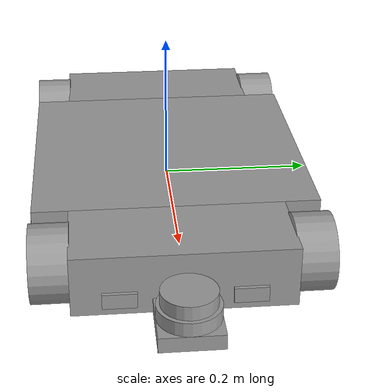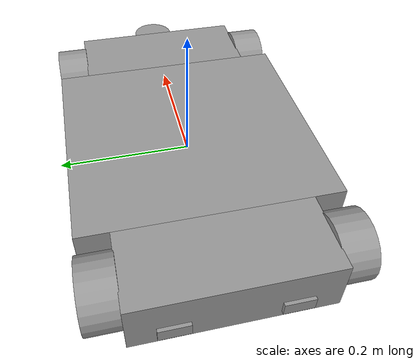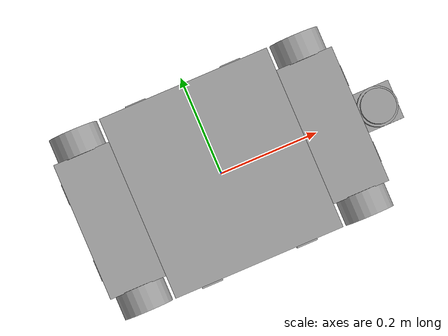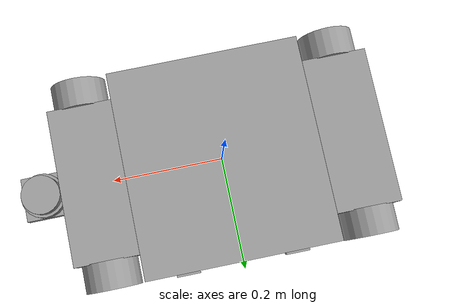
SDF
<sdf version="1.6">
 <model name="MobileRobot">
  <link name="link_0">
   <inertial>
    <mass>1</mass>
    <inertia>
     <ixx>0.166667</ixx>
     <ixy>0</ixy>
     <ixz>0</ixz>
     <iyy>0.166667</iyy>
     <iyz>0</iyz>
     <izz>0.166667</izz>
    </inertia>
   </inertial>
   <visual name="visual">
    <geometry><box><size>0.34888 0.3736 0.08</size></box></geometry>
    <material>
     <lighting>1</lighting>
     <script><uri>file://media/materials/scripts/gazebo.material</uri><name>Gazebo/Grey</name></script>
     <ambient>0.3 0.3 0.3 1</ambient>
     <diffuse>0.7 0.7 0.7 1</diffuse>
     <specular>0.01 0.01 0.01 1</specular>
     <emissive>0 0 0 1</emissive>
     <shader type="vertex"><normal_map>__default__</normal_map></shader>
    </material>
   </visual>
   <collision name="collision">
    <geometry><box><size>0.34888 0.3736 0.08</size></box></geometry>
    <surface>
     <friction>
      <ode><mu>1</mu><mu2>1</mu2><fdir1>0 0 0</fdir1><slip1>0</slip1><slip2>0</slip2></ode>
      <torsional>
       <coefficient>1</coefficient>
       <patch_radius>0</patch_radius>
       <surface_radius>0</surface_radius>
       <use_patch_radius>1</use_patch_radius>
       <ode><slip>0</slip></ode>
      </torsional>
     </friction>
     <bounce><restitution_coefficient>0</restitution_coefficient><threshold>1e+06</threshold></bounce>
     <contact>
      <collide_without_contact>0</collide_without_contact>
      <collide_without_contact_bitmask>1</collide_without_contact_bitmask>
      <collide_bitmask>1</collide_bitmask>
      <ode>
       <soft_cfm>0</soft_cfm>
       <soft_erp>0.2</soft_erp>
       <kp>1e+13</kp>
       <kd>1</kd>
       <max_vel>0.01</max_vel>
       <min_depth>0</min_depth>
      </ode>
      <bullet>
       <split_impulse>1</split_impulse>
       <split_impulse_penetration_threshold>-0.01</split_impulse_penetration_threshold>
       <soft_cfm>0</soft_cfm>
       <soft_erp>0.2</soft_erp>
       <kp>1e+13</kp>
       <kd>1</kd>
      </bullet>
     </contact>
    </surface>
   </collision>
  </link>
  <link name="link_0_0">
   <pose>0.1 -0.187 -0.019 1e-06 -2e-06 -0.000137</pose>
   <inertial>
    <mass>1</mass>
    <inertia>
     <ixx>0.166667</ixx>
     <ixy>0</ixy>
     <ixz>0</ixz>
     <iyy>0.166667</iyy>
     <iyz>0</iyz>
     <izz>0.166667</izz>
    </inertia>
   </inertial>
   <sensor name="ultra1" type="ray">
    <pose>0 0 0 0 0 -1.5708</pose>
    <visualize>1</visualize>
    <update_rate>30</update_rate>
    <ray>
     <scan>
      <horizontal>
       <samples>2</samples>
       <resolution>1</resolution>
       <min_angle>-0.2618</min_angle>
       <max_angle>0.2618</max_angle>
      </horizontal>
      <vertical><samples>1</samples><min_angle>0</min_angle><max_angle>0</max_angle></vertical>
     </scan>
     <range><min>0.05</min><max>0.5</max><resolution>0.02</resolution></range>
    </ray>
    <plugin name="gazebo_ros_laser" filename="libgazebo_ros_laser.so">
     <topicName>/ultra1</topicName>
     <frameName>link_0_0</frameName>
    </plugin>
   </sensor>
   <visual name="visual">
    <geometry><box><size>0.043 0.01 0.02</size></box></geometry>
    <material>
     <lighting>1</lighting>
     <script><uri>file://media/materials/scripts/gazebo.material</uri><name>Gazebo/Grey</name></script>
     <ambient>0.3 0.3 0.3 1</ambient>
     <diffuse>0.7 0.7 0.7 1</diffuse>
     <specular>0.01 0.01 0.01 1</specular>
     <emissive>0 0 0 1</emissive>
     <shader type="vertex"><normal_map>__default__</normal_map></shader>
    </material>
   </visual>
   <collision name="collision">
    <geometry><box><size>0.043 0.01 0.02</size></box></geometry>
    <surface>
     <friction>
      <ode><mu>1</mu><mu2>1</mu2><fdir1>0 0 0</fdir1><slip1>0</slip1><slip2>0</slip2></ode>
      <torsional>
       <coefficient>1</coefficient>
       <patch_radius>0</patch_radius>
       <surface_radius>0</surface_radius>
       <use_patch_radius>1</use_patch_radius>
       <ode><slip>0</slip></ode>
      </torsional>
     </friction>
     <bounce><restitution_coefficient>0</restitution_coefficient><threshold>1e+06</threshold></bounce>
     <contact>
      <collide_without_contact>0</collide_without_contact>
      <collide_without_contact_bitmask>1</collide_without_contact_bitmask>
      <collide_bitmask>1</collide_bitmask>
      <ode>
       <soft_cfm>0</soft_cfm>
       <soft_erp>0.2</soft_erp>
       <kp>1e+13</kp>
       <kd>1</kd>
       <max_vel>0.01</max_vel>
       <min_depth>0</min_depth>
      </ode>
      <bullet>
       <split_impulse>1</split_impulse>
       <split_impulse_penetration_threshold>-0.01</split_impulse_penetration_threshold>
       <soft_cfm>0</soft_cfm>
       <soft_erp>0.2</soft_erp>
       <kp>1e+13</kp>
       <kd>1</kd>
      </bullet>
     </contact>
    </surface>
   </collision>
  </link>
  <link name="link_0_0_clone">
   <pose>-0.1 -0.187 -0.019 2e-06 -4e-06 -0.000274</pose>
   <inertial>
    <mass>1</mass>
    <inertia>
     <ixx>0.166667</ixx>
     <ixy>0</ixy>
     <ixz>0</ixz>
     <iyy>0.166667</iyy>
     <iyz>0</iyz>
     <izz>0.166667</izz>
    </inertia>
   </inertial>
   <sensor name="ultra2" type="ray">
    <pose>0 0 0 0 0 -1.5708</pose>
    <visualize>1</visualize>
    <update_rate>30</update_rate>
    <ray>
     <scan>
      <horizontal>
       <samples>2</samples>
       <resolution>1</resolution>
       <min_angle>-0.2618</min_angle>
       <max_angle>0.2618</max_angle>
      </horizontal>
      <vertical><samples>1</samples><min_angle>0</min_angle><max_angle>0</max_angle></vertical>
     </scan>
     <range><min>0.05</min><max>0.5</max><resolution>0.02</resolution></range>
    </ray>
    <plugin name="gazebo_ros_laser" filename="libgazebo_ros_laser.so">
     <topicName>/ultra2</topicName>
     <frameName>link_0_0_clone</frameName>
    </plugin>
   </sensor>
   <visual name="visual_0">
    <geometry><box><size>0.043 0.01 0.02</size></box></geometry>
    <material>
     <lighting>1</lighting>
     <script><uri>file://media/materials/scripts/gazebo.material</uri><name>Gazebo/Grey</name></script>
     <ambient>0.3 0.3 0.3 1</ambient>
     <diffuse>0.7 0.7 0.7 1</diffuse>
     <specular>0.01 0.01 0.01 1</specular>
     <emissive>0 0 0 1</emissive>
     <shader type="vertex"><normal_map>__default__</normal_map></shader>
    </material>
   </visual>
   <collision name="collision">
    <geometry><box><size>0.043 0.01 0.02</size></box></geometry>
    <surface>
     <friction>
      <ode><mu>1</mu><mu2>1</mu2><fdir1>0 0 0</fdir1><slip1>0</slip1><slip2>0</slip2></ode>
      <torsional>
       <coefficient>1</coefficient>
       <patch_radius>0</patch_radius>
       <surface_radius>0</surface_radius>
       <use_patch_radius>1</use_patch_radius>
       <ode><slip>0</slip></ode>
      </torsional>
     </friction>
     <bounce><restitution_coefficient>0</restitution_coefficient><threshold>1e+06</threshold></bounce>
     <contact>
      <collide_without_contact>0</collide_without_contact>
      <collide_without_contact_bitmask>1</collide_without_contact_bitmask>
      <collide_bitmask>1</collide_bitmask>
      <ode>
       <soft_cfm>0</soft_cfm>
       <soft_erp>0.2</soft_erp>
       <kp>1e+13</kp>
       <kd>1</kd>
       <max_vel>0.01</max_vel>
       <min_depth>0</min_depth>
      </ode>
      <bullet>
       <split_impulse>1</split_impulse>
       <split_impulse_penetration_threshold>-0.01</split_impulse_penetration_threshold>
       <soft_cfm>0</soft_cfm>
       <soft_erp>0.2</soft_erp>
       <kp>1e+13</kp>
       <kd>1</kd>
      </bullet>
     </contact>
    </surface>
   </collision>
  </link>
  <link name="link_0_0_clone_0">
   <pose>0.1 0.187 -0.019 2e-06 -4e-06 -0.000274</pose>
   <inertial>
    <mass>1</mass>
    <inertia>
     <ixx>0.166667</ixx>
     <ixy>0</ixy>
     <ixz>0</ixz>
     <iyy>0.166667</iyy>
     <iyz>0</iyz>
     <izz>0.166667</izz>
    </inertia>
   </inertial>
   <sensor name="ultra3" type="ray">
    <pose>0 0 0 0 -0 1.5708</pose>
    <visualize>1</visualize>
    <update_rate>30</update_rate>
    <ray>
     <scan>
      <horizontal>
       <samples>2</samples>
       <resolution>1</resolution>
       <min_angle>-0.2618</min_angle>
       <max_angle>0.2618</max_angle>
      </horizontal>
      <vertical><samples>1</samples><min_angle>0</min_angle><max_angle>0</max_angle></vertical>
     </scan>
     <range><min>0.05</min><max>0.5</max><resolution>0.02</resolution></range>
    </ray>
    <plugin name="gazebo_ros_laser" filename="libgazebo_ros_laser.so">
     <topicName>/ultra3</topicName>
     <frameName>link_0_0_clone_0</frameName>
    </plugin>
   </sensor>
   <visual name="visual_0">
    <geometry><box><size>0.043 0.01 0.02</size></box></geometry>
    <material>
     <lighting>1</lighting>
     <script><uri>file://media/materials/scripts/gazebo.material</uri><name>Gazebo/Grey</name></script>
     <ambient>0.3 0.3 0.3 1</ambient>
     <diffuse>0.7 0.7 0.7 1</diffuse>
     <specular>0.01 0.01 0.01 1</specular>
     <emissive>0 0 0 1</emissive>
     <shader type="vertex"><normal_map>__default__</normal_map></shader>
    </material>
   </visual>
   <collision name="collision">
    <geometry><box><size>0.043 0.01 0.02</size></box></geometry>
    <surface>
     <friction>
      <ode><mu>1</mu><mu2>1</mu2><fdir1>0 0 0</fdir1><slip1>0</slip1><slip2>0</slip2></ode>
      <torsional>
       <coefficient>1</coefficient>
       <patch_radius>0</patch_radius>
       <surface_radius>0</surface_radius>
       <use_patch_radius>1</use_patch_radius>
       <ode><slip>0</slip></ode>
      </torsional>
     </friction>
     <bounce><restitution_coefficient>0</restitution_coefficient><threshold>1e+06</threshold></bounce>
     <contact>
      <collide_without_contact>0</collide_without_contact>
      <collide_without_contact_bitmask>1</collide_without_contact_bitmask>
      <collide_bitmask>1</collide_bitmask>
      <ode>
       <soft_cfm>0</soft_cfm>
       <soft_erp>0.2</soft_erp>
       <kp>1e+13</kp>
       <kd>1</kd>
       <max_vel>0.01</max_vel>
       <min_depth>0</min_depth>
      </ode>
      <bullet>
       <split_impulse>1</split_impulse>
       <split_impulse_penetration_threshold>-0.01</split_impulse_penetration_threshold>
       <soft_cfm>0</soft_cfm>
       <soft_erp>0.2</soft_erp>
       <kp>1e+13</kp>
       <kd>1</kd>
      </bullet>
     </contact>
    </surface>
   </collision>
  </link>
  <link name="link_0_0_clone_1">
   <pose>-0.1 0.187 -0.019 2e-06 -4e-06 -0.000274</pose>
   <inertial>
    <mass>1</mass>
    <inertia>
     <ixx>0.166667</ixx>
     <ixy>0</ixy>
     <ixz>0</ixz>
     <iyy>0.166667</iyy>
     <iyz>0</iyz>
     <izz>0.166667</izz>
    </inertia>
   </inertial>
   <sensor name="ultra4" type="ray">
    <pose>0 0 0 0 -0 1.5708</pose>
    <visualize>1</visualize>
    <update_rate>30</update_rate>
    <ray>
     <scan>
      <horizontal>
       <samples>2</samples>
       <resolution>1</resolution>
       <min_angle>-0.2618</min_angle>
       <max_angle>0.2618</max_angle>
      </horizontal>
      <vertical><samples>1</samples><min_angle>0</min_angle><max_angle>0</max_angle></vertical>
     </scan>
     <range><min>0.05</min><max>0.5</max><resolution>0.02</resolution></range>
    </ray>
    <plugin name="gazebo_ros_laser" filename="libgazebo_ros_laser.so">
     <topicName>/ultra4</topicName>
     <frameName>link_0_0_clone_1</frameName>
    </plugin>
   </sensor>
   <visual name="visual_0">
    <geometry><box><size>0.043 0.01 0.02</size></box></geometry>
    <material>
     <lighting>1</lighting>
     <script><uri>file://media/materials/scripts/gazebo.material</uri><name>Gazebo/Grey</name></script>
     <ambient>0.3 0.3 0.3 1</ambient>
     <diffuse>0.7 0.7 0.7 1</diffuse>
     <specular>0.01 0.01 0.01 1</specular>
     <emissive>0 0 0 1</emissive>
     <shader type="vertex"><normal_map>__default__</normal_map></shader>
    </material>
   </visual>
   <collision name="collision">
    <geometry><box><size>0.043 0.01 0.02</size></box></geometry>
    <surface>
     <friction>
      <ode><mu>1</mu><mu2>1</mu2><fdir1>0 0 0</fdir1><slip1>0</slip1><slip2>0</slip2></ode>
      <torsional>
       <coefficient>1</coefficient>
       <patch_radius>0</patch_radius>
       <surface_radius>0</surface_radius>
       <use_patch_radius>1</use_patch_radius>
       <ode><slip>0</slip></ode>
      </torsional>
     </friction>
     <bounce><restitution_coefficient>0</restitution_coefficient><threshold>1e+06</threshold></bounce>
     <contact>
      <collide_without_contact>0</collide_without_contact>
      <collide_without_contact_bitmask>1</collide_without_contact_bitmask>
      <collide_bitmask>1</collide_bitmask>
      <ode>
       <soft_cfm>0</soft_cfm>
       <soft_erp>0.2</soft_erp>
       <kp>1e+13</kp>
       <kd>1</kd>
       <max_vel>0.01</max_vel>
       <min_depth>0</min_depth>
      </ode>
      <bullet>
       <split_impulse>1</split_impulse>
       <split_impulse_penetration_threshold>-0.01</split_impulse_penetration_threshold>
       <soft_cfm>0</soft_cfm>
       <soft_erp>0.2</soft_erp>
       <kp>1e+13</kp>
       <kd>1</kd>
      </bullet>
     </contact>
    </surface>
   </collision>
  </link>
  <link name="link_0_0_clone_clone">
   <pose>-0.29 0.08 -0.019 0 -0 0</pose>
   <inertial>
    <mass>1</mass>
    <inertia>
     <ixx>0.166667</ixx>
     <ixy>0</ixy>
     <ixz>0</ixz>
     <iyy>0.166667</iyy>
     <iyz>0</iyz>
     <izz>0.166667</izz>
    </inertia>
   </inertial>
   <sensor name="ultra5" type="ray">
    <pose>0 0 0 0 -0 -3.14159</pose>
    <visualize>1</visualize>
    <update_rate>30</update_rate>
    <ray>
     <scan>
      <horizontal>
       <samples>2</samples>
       <resolution>1</resolution>
       <min_angle>-0.2618</min_angle>
       <max_angle>0.2618</max_angle>
      </horizontal>
      <vertical><samples>1</samples><min_angle>0</min_angle><max_angle>0</max_angle></vertical>
     </scan>
     <range><min>0.05</min><max>0.5</max><resolution>0.02</resolution></range>
    </ray>
    <plugin name="gazebo_ros_laser" filename="libgazebo_ros_laser.so">
     <topicName>/ultra5</topicName>
     <frameName>link_0_0_clone_clone</frameName>
    </plugin>
   </sensor>
   <visual name="visual_0">
    <geometry><box><size>0.01 0.043 0.02</size></box></geometry>
    <material>
     <lighting>1</lighting>
     <script><uri>file://media/materials/scripts/gazebo.material</uri><name>Gazebo/Grey</name></script>
     <ambient>0.3 0.3 0.3 1</ambient>
     <diffuse>0.7 0.7 0.7 1</diffuse>
     <specular>0.01 0.01 0.01 1</specular>
     <emissive>0 0 0 1</emissive>
     <shader type="vertex"><normal_map>__default__</normal_map></shader>
    </material>
   </visual>
   <collision name="collision">
    <geometry><box><size>0.01 0.043 0.02</size></box></geometry>
    <surface>
     <friction>
      <ode><mu>1</mu><mu2>1</mu2><fdir1>0 0 0</fdir1><slip1>0</slip1><slip2>0</slip2></ode>
      <torsional>
       <coefficient>1</coefficient>
       <patch_radius>0</patch_radius>
       <surface_radius>0</surface_radius>
       <use_patch_radius>1</use_patch_radius>
       <ode><slip>0</slip></ode>
      </torsional>
     </friction>
     <bounce><restitution_coefficient>0</restitution_coefficient><threshold>1e+06</threshold></bounce>
     <contact>
      <collide_without_contact>0</collide_without_contact>
      <collide_without_contact_bitmask>1</collide_without_contact_bitmask>
      <collide_bitmask>1</collide_bitmask>
      <ode>
       <soft_cfm>0</soft_cfm>
       <soft_erp>0.2</soft_erp>
       <kp>1e+13</kp>
       <kd>1</kd>
       <max_vel>0.01</max_vel>
       <min_depth>0</min_depth>
      </ode>
      <bullet>
       <split_impulse>1</split_impulse>
       <split_impulse_penetration_threshold>-0.01</split_impulse_penetration_threshold>
       <soft_cfm>0</soft_cfm>
       <soft_erp>0.2</soft_erp>
       <kp>1e+13</kp>
       <kd>1</kd>
      </bullet>
     </contact>
    </surface>
   </collision>
  </link>
  <link name="link_0_0_clone_clone_clone">
   <pose>-0.29 -0.08 -0.019 0 -0 0</pose>
   <inertial>
    <mass>1</mass>
    <inertia>
     <ixx>0.166667</ixx>
     <ixy>0</ixy>
     <ixz>0</ixz>
     <iyy>0.166667</iyy>
     <iyz>0</iyz>
     <izz>0.166667</izz>
    </inertia>
   </inertial>
   <sensor name="ultra6" type="ray">
    <pose>0 0 0 0 -0 3.14159</pose>
    <visualize>1</visualize>
    <update_rate>30</update_rate>
    <ray>
     <scan>
      <horizontal>
       <samples>2</samples>
       <resolution>1</resolution>
       <min_angle>-0.2618</min_angle>
       <max_angle>0.2618</max_angle>
      </horizontal>
      <vertical><samples>1</samples><min_angle>0</min_angle><max_angle>0</max_angle></vertical>
     </scan>
     <range><min>0.05</min><max>0.5</max><resolution>0.02</resolution></range>
    </ray>
    <plugin name="gazebo_ros_laser" filename="libgazebo_ros_laser.so">
     <topicName>/ultra6</topicName>
     <frameName>link_0_0_clone_clone_clone</frameName>
    </plugin>
   </sensor>
   <visual name="visual_0">
    <geometry><box><size>0.01 0.043 0.02</size></box></geometry>
    <material>
     <lighting>1</lighting>
     <script><uri>file://media/materials/scripts/gazebo.material</uri><name>Gazebo/Grey</name></script>
     <ambient>0.3 0.3 0.3 1</ambient>
     <diffuse>0.7 0.7 0.7 1</diffuse>
     <specular>0.01 0.01 0.01 1</specular>
     <emissive>0 0 0 1</emissive>
     <shader type="vertex"><normal_map>__default__</normal_map></shader>
    </material>
   </visual>
   <collision name="collision">
    <geometry><box><size>0.01 0.043 0.02</size></box></geometry>
    <surface>
     <friction>
      <ode><mu>1</mu><mu2>1</mu2><fdir1>0 0 0</fdir1><slip1>0</slip1><slip2>0</slip2></ode>
      <torsional>
       <coefficient>1</coefficient>
       <patch_radius>0</patch_radius>
       <surface_radius>0</surface_radius>
       <use_patch_radius>1</use_patch_radius>
       <ode><slip>0</slip></ode>
      </torsional>
     </friction>
     <bounce><restitution_coefficient>0</restitution_coefficient><threshold>1e+06</threshold></bounce>
     <contact>
      <collide_without_contact>0</collide_without_contact>
      <collide_without_contact_bitmask>1</collide_without_contact_bitmask>
      <collide_bitmask>1</collide_bitmask>
      <ode>
       <soft_cfm>0</soft_cfm>
       <soft_erp>0.2</soft_erp>
       <kp>1e+13</kp>
       <kd>1</kd>
       <max_vel>0.01</max_vel>
       <min_depth>0</min_depth>
      </ode>
      <bullet>
       <split_impulse>1</split_impulse>
       <split_impulse_penetration_threshold>-0.01</split_impulse_penetration_threshold>
       <soft_cfm>0</soft_cfm>
       <soft_erp>0.2</soft_erp>
       <kp>1e+13</kp>
       <kd>1</kd>
      </bullet>
     </contact>
    </surface>
   </collision>
  </link>
  <link name="link_0_0_clone_clone_clone_0">
   <pose>0.29 0.08 -0.019 1e-06 -3e-06 0.000146</pose>
   <inertial>
    <mass>1</mass>
    <inertia>
     <ixx>0.166667</ixx>
     <ixy>0</ixy>
     <ixz>0</ixz>
     <iyy>0.166667</iyy>
     <iyz>0</iyz>
     <izz>0.166667</izz>
    </inertia>
   </inertial>
   <sensor name="ultra7" type="ray">
    <visualize>1</visualize>
    <update_rate>30</update_rate>
    <ray>
     <scan>
      <horizontal>
       <samples>2</samples>
       <resolution>1</resolution>
       <min_angle>-0.2618</min_angle>
       <max_angle>0.2618</max_angle>
      </horizontal>
      <vertical><samples>1</samples><min_angle>0</min_angle><max_angle>0</max_angle></vertical>
     </scan>
     <range><min>0.05</min><max>0.5</max><resolution>0.02</resolution></range>
    </ray>
    <plugin name="gazebo_ros_laser" filename="libgazebo_ros_laser.so">
     <topicName>/ultra7</topicName>
     <frameName>link_0_0_clone_clone_clone_0</frameName>
    </plugin>
   </sensor>
   <visual name="visual_0">
    <geometry><box><size>0.01 0.043 0.02</size></box></geometry>
    <material>
     <lighting>1</lighting>
     <script><uri>file://media/materials/scripts/gazebo.material</uri><name>Gazebo/Grey</name></script>
     <ambient>0.3 0.3 0.3 1</ambient>
     <diffuse>0.7 0.7 0.7 1</diffuse>
     <specular>0.01 0.01 0.01 1</specular>
     <emissive>0 0 0 1</emissive>
     <shader type="vertex"><normal_map>__default__</normal_map></shader>
    </material>
   </visual>
   <collision name="collision">
    <geometry><box><size>0.01 0.043 0.02</size></box></geometry>
    <surface>
     <friction>
      <ode><mu>1</mu><mu2>1</mu2><fdir1>0 0 0</fdir1><slip1>0</slip1><slip2>0</slip2></ode>
      <torsional>
       <coefficient>1</coefficient>
       <patch_radius>0</patch_radius>
       <surface_radius>0</surface_radius>
       <use_patch_radius>1</use_patch_radius>
       <ode><slip>0</slip></ode>
      </torsional>
     </friction>
     <bounce><restitution_coefficient>0</restitution_coefficient><threshold>1e+06</threshold></bounce>
     <contact>
      <collide_without_contact>0</collide_without_contact>
      <collide_without_contact_bitmask>1</collide_without_contact_bitmask>
      <collide_bitmask>1</collide_bitmask>
      <ode>
       <soft_cfm>0</soft_cfm>
       <soft_erp>0.2</soft_erp>
       <kp>1e+13</kp>
       <kd>1</kd>
       <max_vel>0.01</max_vel>
       <min_depth>0</min_depth>
      </ode>
      <bullet>
       <split_impulse>1</split_impulse>
       <split_impulse_penetration_threshold>-0.01</split_impulse_penetration_threshold>
       <soft_cfm>0</soft_cfm>
       <soft_erp>0.2</soft_erp>
       <kp>1e+13</kp>
       <kd>1</kd>
      </bullet>
     </contact>
    </surface>
   </collision>
  </link>
  <link name="link_0_0_clone_clone_clone_0_clone">
   <pose>0.29 -0.08 -0.019 2e-06 -6e-06 0.000292</pose>
   <inertial>
    <mass>1</mass>
    <inertia>
     <ixx>0.166667</ixx>
     <ixy>0</ixy>
     <ixz>0</ixz>
     <iyy>0.166667</iyy>
     <iyz>0</iyz>
     <izz>0.166667</izz>
    </inertia>
   </inertial>
   <sensor name="ultra8" type="ray">
    <visualize>1</visualize>
    <update_rate>30</update_rate>
    <ray>
     <scan>
      <horizontal>
       <samples>2</samples>
       <resolution>1</resolution>
       <min_angle>-0.2618</min_angle>
       <max_angle>0.2618</max_angle>
      </horizontal>
      <vertical><samples>1</samples><min_angle>0</min_angle><max_angle>0</max_angle></vertical>
     </scan>
     <range><min>0.05</min><max>0.5</max><resolution>0.02</resolution></range>
    </ray>
    <plugin name="gazebo_ros_laser" filename="libgazebo_ros_laser.so">
     <topicName>/ultra8</topicName>
     <frameName>link_0_0_clone_clone_clone_0_clone</frameName>
    </plugin>
   </sensor>
   <visual name="visual_0">
    <geometry><box><size>0.01 0.043 0.02</size></box></geometry>
    <material>
     <lighting>1</lighting>
     <script><uri>file://media/materials/scripts/gazebo.material</uri><name>Gazebo/Grey</name></script>
     <ambient>0.3 0.3 0.3 1</ambient>
     <diffuse>0.7 0.7 0.7 1</diffuse>
     <specular>0.01 0.01 0.01 1</specular>
     <emissive>0 0 0 1</emissive>
     <shader type="vertex"><normal_map>__default__</normal_map></shader>
    </material>
   </visual>
   <collision name="collision">
    <geometry><box><size>0.01 0.043 0.02</size></box></geometry>
    <surface>
     <friction>
      <ode><mu>1</mu><mu2>1</mu2><fdir1>0 0 0</fdir1><slip1>0</slip1><slip2>0</slip2></ode>
      <torsional>
       <coefficient>1</coefficient>
       <patch_radius>0</patch_radius>
       <surface_radius>0</surface_radius>
       <use_patch_radius>1</use_patch_radius>
       <ode><slip>0</slip></ode>
      </torsional>
     </friction>
     <bounce><restitution_coefficient>0</restitution_coefficient><threshold>1e+06</threshold></bounce>
     <contact>
      <collide_without_contact>0</collide_without_contact>
      <collide_without_contact_bitmask>1</collide_without_contact_bitmask>
      <collide_bitmask>1</collide_bitmask>
      <ode>
       <soft_cfm>0</soft_cfm>
       <soft_erp>0.2</soft_erp>
       <kp>1e+13</kp>
       <kd>1</kd>
       <max_vel>0.01</max_vel>
       <min_depth>0</min_depth>
      </ode>
      <bullet>
       <split_impulse>1</split_impulse>
       <split_impulse_penetration_threshold>-0.01</split_impulse_penetration_threshold>
       <soft_cfm>0</soft_cfm>
       <soft_erp>0.2</soft_erp>
       <kp>1e+13</kp>
       <kd>1</kd>
      </bullet>
     </contact>
    </surface>
   </collision>
  </link>
  <link name="link_1">
   <pose>-0.23222 0 -0 0 -0 0</pose>
   <inertial>
    <mass>1</mass>
    <inertia>
     <ixx>0.166667</ixx>
     <ixy>0</ixy>
     <ixz>0</ixz>
     <iyy>0.166667</iyy>
     <iyz>0</iyz>
     <izz>0.166667</izz>
    </inertia>
   </inertial>
   <visual name="visual">
    <geometry><box><size>0.11556 0.27932 0.08</size></box></geometry>
    <material>
     <lighting>1</lighting>
     <script><uri>file://media/materials/scripts/gazebo.material</uri><name>Gazebo/Grey</name></script>
     <ambient>0.3 0.3 0.3 1</ambient>
     <diffuse>0.7 0.7 0.7 1</diffuse>
     <specular>0.01 0.01 0.01 1</specular>
     <emissive>0 0 0 1</emissive>
     <shader type="vertex"><normal_map>__default__</normal_map></shader>
    </material>
   </visual>
   <collision name="collision">
    <geometry><box><size>0.11556 0.27932 0.08</size></box></geometry>
    <surface>
     <friction>
      <ode><mu>1</mu><mu2>1</mu2><fdir1>0 0 0</fdir1><slip1>0</slip1><slip2>0</slip2></ode>
      <torsional>
       <coefficient>1</coefficient>
       <patch_radius>0</patch_radius>
       <surface_radius>0</surface_radius>
       <use_patch_radius>1</use_patch_radius>
       <ode><slip>0</slip></ode>
      </torsional>
     </friction>
     <bounce><restitution_coefficient>0</restitution_coefficient><threshold>1e+06</threshold></bounce>
     <contact>
      <collide_without_contact>0</collide_without_contact>
      <collide_without_contact_bitmask>1</collide_without_contact_bitmask>
      <collide_bitmask>1</collide_bitmask>
      <ode>
       <soft_cfm>0</soft_cfm>
       <soft_erp>0.2</soft_erp>
       <kp>1e+13</kp>
       <kd>1</kd>
       <max_vel>0.01</max_vel>
       <min_depth>0</min_depth>
      </ode>
      <bullet>
       <split_impulse>1</split_impulse>
       <split_impulse_penetration_threshold>-0.01</split_impulse_penetration_threshold>
       <soft_cfm>0</soft_cfm>
       <soft_erp>0.2</soft_erp>
       <kp>1e+13</kp>
       <kd>1</kd>
      </bullet>
     </contact>
    </surface>
   </collision>
  </link>
  <link name="link_1_clone">
   <pose>0.23222 -0 0 0 -0 0</pose>
   <inertial>
    <mass>1</mass>
    <inertia>
     <ixx>0.166667</ixx>
     <ixy>0</ixy>
     <ixz>0</ixz>
     <iyy>0.166667</iyy>
     <iyz>0</iyz>
     <izz>0.166667</izz>
    </inertia>
   </inertial>
   <visual name="visual">
    <geometry><box><size>0.11556 0.27932 0.08</size></box></geometry>
    <material>
     <lighting>1</lighting>
     <script><uri>file://media/materials/scripts/gazebo.material</uri><name>Gazebo/Grey</name></script>
     <ambient>0.3 0.3 0.3 1</ambient>
     <diffuse>0.7 0.7 0.7 1</diffuse>
     <specular>0.01 0.01 0.01 1</specular>
     <emissive>0 0 0 1</emissive>
     <shader type="vertex"><normal_map>__default__</normal_map></shader>
    </material>
   </visual>
   <collision name="collision">
    <geometry><box><size>0.11556 0.27932 0.08</size></box></geometry>
    <surface>
     <friction>
      <ode><mu>1</mu><mu2>1</mu2><fdir1>0 0 0</fdir1><slip1>0</slip1><slip2>0</slip2></ode>
      <torsional>
       <coefficient>1</coefficient>
       <patch_radius>0</patch_radius>
       <surface_radius>0</surface_radius>
       <use_patch_radius>1</use_patch_radius>
       <ode><slip>0</slip></ode>
      </torsional>
     </friction>
     <bounce><restitution_coefficient>0</restitution_coefficient><threshold>1e+06</threshold></bounce>
     <contact>
      <collide_without_contact>0</collide_without_contact>
      <collide_without_contact_bitmask>1</collide_without_contact_bitmask>
      <collide_bitmask>1</collide_bitmask>
      <ode>
       <soft_cfm>0</soft_cfm>
       <soft_erp>0.2</soft_erp>
       <kp>1e+13</kp>
       <kd>1</kd>
       <max_vel>0.01</max_vel>
       <min_depth>0</min_depth>
      </ode>
      <bullet>
       <split_impulse>1</split_impulse>
       <split_impulse_penetration_threshold>-0.01</split_impulse_penetration_threshold>
       <soft_cfm>0</soft_cfm>
       <soft_erp>0.2</soft_erp>
       <kp>1e+13</kp>
       <kd>1</kd>
      </bullet>
     </contact>
    </surface>
   </collision>
  </link>
  <link name="link_3">
   <pose>0.23222 0.16323 0 1.5708 -0 0</pose>
   <inertial>
    <mass>2</mass>
    <inertia><ixx>0.145833</ixx><ixy>0</ixy><ixz>0</ixz><iyy>0.145833</iyy><iyz>0</iyz><izz>0.125</izz></inertia>
   </inertial>
   <visual name="visual">
    <geometry><cylinder><radius>0.05</radius><length>0.05</length></cylinder></geometry>
    <material>
     <lighting>1</lighting>
     <script><uri>file://media/materials/scripts/gazebo.material</uri><name>Gazebo/Grey</name></script>
     <ambient>0.3 0.3 0.3 1</ambient>
     <diffuse>0.7 0.7 0.7 1</diffuse>
     <specular>0.01 0.01 0.01 1</specular>
     <emissive>0 0 0 1</emissive>
     <shader type="vertex"><normal_map>__default__</normal_map></shader>
    </material>
   </visual>
   <collision name="collision">
    <geometry><cylinder><radius>0.05</radius><length>0.05</length></cylinder></geometry>
    <surface>
     <friction>
      <ode><mu>1</mu><mu2>1</mu2><fdir1>0 0 0</fdir1><slip1>0</slip1><slip2>0</slip2></ode>
      <torsional>
       <coefficient>1</coefficient>
       <patch_radius>0</patch_radius>
       <surface_radius>0</surface_radius>
       <use_patch_radius>1</use_patch_radius>
       <ode><slip>0</slip></ode>
      </torsional>
     </friction>
     <bounce><restitution_coefficient>0</restitution_coefficient><threshold>1e+06</threshold></bounce>
     <contact>
      <collide_without_contact>0</collide_without_contact>
      <collide_without_contact_bitmask>1</collide_without_contact_bitmask>
      <collide_bitmask>1</collide_bitmask>
      <ode>
       <soft_cfm>0</soft_cfm>
       <soft_erp>0.2</soft_erp>
       <kp>1e+13</kp>
       <kd>1</kd>
       <max_vel>0.01</max_vel>
       <min_depth>0</min_depth>
      </ode>
      <bullet>
       <split_impulse>1</split_impulse>
       <split_impulse_penetration_threshold>-0.01</split_impulse_penetration_threshold>
       <soft_cfm>0</soft_cfm>
       <soft_erp>0.2</soft_erp>
       <kp>1e+13</kp>
       <kd>1</kd>
      </bullet>
     </contact>
    </surface>
   </collision>
  </link>
  <link name="link_3_clone">
   <pose>-0.23222 0.16323 0 1.5708 -0 0</pose>
   <inertial>
    <mass>2</mass>
    <inertia><ixx>0.145833</ixx><ixy>0</ixy><ixz>0</ixz><iyy>0.145833</iyy><iyz>0</iyz><izz>0.125</izz></inertia>
   </inertial>
   <visual name="visual">
    <geometry><cylinder><radius>0.05</radius><length>0.05</length></cylinder></geometry>
    <material>
     <lighting>1</lighting>
     <script><uri>file://media/materials/scripts/gazebo.material</uri><name>Gazebo/Grey</name></script>
     <ambient>0.3 0.3 0.3 1</ambient>
     <diffuse>0.7 0.7 0.7 1</diffuse>
     <specular>0.01 0.01 0.01 1</specular>
     <emissive>0 0 0 1</emissive>
     <shader type="vertex"><normal_map>__default__</normal_map></shader>
    </material>
   </visual>
   <collision name="collision">
    <geometry><cylinder><radius>0.05</radius><length>0.05</length></cylinder></geometry>
    <surface>
     <friction>
      <ode><mu>1</mu><mu2>1</mu2><fdir1>0 0 0</fdir1><slip1>0</slip1><slip2>0</slip2></ode>
      <torsional>
       <coefficient>1</coefficient>
       <patch_radius>0</patch_radius>
       <surface_radius>0</surface_radius>
       <use_patch_radius>1</use_patch_radius>
       <ode><slip>0</slip></ode>
      </torsional>
     </friction>
     <bounce><restitution_coefficient>0</restitution_coefficient><threshold>1e+06</threshold></bounce>
     <contact>
      <collide_without_contact>0</collide_without_contact>
      <collide_without_contact_bitmask>1</collide_without_contact_bitmask>
      <collide_bitmask>1</collide_bitmask>
      <ode>
       <soft_cfm>0</soft_cfm>
       <soft_erp>0.2</soft_erp>
       <kp>1e+13</kp>
       <kd>1</kd>
       <max_vel>0.01</max_vel>
       <min_depth>0</min_depth>
      </ode>
      <bullet>
       <split_impulse>1</split_impulse>
       <split_impulse_penetration_threshold>-0.01</split_impulse_penetration_threshold>
       <soft_cfm>0</soft_cfm>
       <soft_erp>0.2</soft_erp>
       <kp>1e+13</kp>
       <kd>1</kd>
      </bullet>
     </contact>
    </surface>
   </collision>
  </link>
  <link name="link_3_clone_clone">
   <pose>0.23222 -0.16323 -0 1.5708 -0 0</pose>
   <inertial>
    <mass>2</mass>
    <inertia><ixx>0.145833</ixx><ixy>0</ixy><ixz>0</ixz><iyy>0.145833</iyy><iyz>0</iyz><izz>0.125</izz></inertia>
   </inertial>
   <visual name="visual">
    <geometry><cylinder><radius>0.05</radius><length>0.05</length></cylinder></geometry>
    <material>
     <lighting>1</lighting>
     <script><uri>file://media/materials/scripts/gazebo.material</uri><name>Gazebo/Grey</name></script>
     <ambient>0.3 0.3 0.3 1</ambient>
     <diffuse>0.7 0.7 0.7 1</diffuse>
     <specular>0.01 0.01 0.01 1</specular>
     <emissive>0 0 0 1</emissive>
     <shader type="vertex"><normal_map>__default__</normal_map></shader>
    </material>
   </visual>
   <collision name="collision">
    <geometry><cylinder><radius>0.05</radius><length>0.05</length></cylinder></geometry>
    <surface>
     <friction>
      <ode><mu>1</mu><mu2>1</mu2><fdir1>0 0 0</fdir1><slip1>0</slip1><slip2>0</slip2></ode>
      <torsional>
       <coefficient>1</coefficient>
       <patch_radius>0</patch_radius>
       <surface_radius>0</surface_radius>
       <use_patch_radius>1</use_patch_radius>
       <ode><slip>0</slip></ode>
      </torsional>
     </friction>
     <bounce><restitution_coefficient>0</restitution_coefficient><threshold>1e+06</threshold></bounce>
     <contact>
      <collide_without_contact>0</collide_without_contact>
      <collide_without_contact_bitmask>1</collide_without_contact_bitmask>
      <collide_bitmask>1</collide_bitmask>
      <ode>
       <soft_cfm>0</soft_cfm>
       <soft_erp>0.2</soft_erp>
       <kp>1e+13</kp>
       <kd>1</kd>
       <max_vel>0.01</max_vel>
       <min_depth>0</min_depth>
      </ode>
      <bullet>
       <split_impulse>1</split_impulse>
       <split_impulse_penetration_threshold>-0.01</split_impulse_penetration_threshold>
       <soft_cfm>0</soft_cfm>
       <soft_erp>0.2</soft_erp>
       <kp>1e+13</kp>
       <kd>1</kd>
      </bullet>
     </contact>
    </surface>
   </collision>
  </link>
  <link name="link_3_clone_clone_clone">
   <pose>-0.23222 -0.16323 -0 1.5708 -0 0</pose>
   <inertial>
    <mass>2</mass>
    <inertia><ixx>0.145833</ixx><ixy>0</ixy><ixz>0</ixz><iyy>0.145833</iyy><iyz>0</iyz><izz>0.125</izz></inertia>
   </inertial>
   <visual name="visual">
    <geometry><cylinder><radius>0.05</radius><length>0.05</length></cylinder></geometry>
    <material>
     <lighting>1</lighting>
     <script><uri>file://media/materials/scripts/gazebo.material</uri><name>Gazebo/Grey</name></script>
     <ambient>0.3 0.3 0.3 1</ambient>
     <diffuse>0.7 0.7 0.7 1</diffuse>
     <specular>0.01 0.01 0.01 1</specular>
     <emissive>0 0 0 1</emissive>
     <shader type="vertex"><normal_map>__default__</normal_map></shader>
    </material>
   </visual>
   <collision name="collision">
    <geometry><cylinder><radius>0.05</radius><length>0.05</length></cylinder></geometry>
    <surface>
     <friction>
      <ode><mu>1</mu><mu2>1</mu2><fdir1>0 0 0</fdir1><slip1>0</slip1><slip2>0</slip2></ode>
      <torsional>
       <coefficient>1</coefficient>
       <patch_radius>0</patch_radius>
       <surface_radius>0</surface_radius>
       <use_patch_radius>1</use_patch_radius>
       <ode><slip>0</slip></ode>
      </torsional>
     </friction>
     <bounce><restitution_coefficient>0</restitution_coefficient><threshold>1e+06</threshold></bounce>
     <contact>
      <collide_without_contact>0</collide_without_contact>
      <collide_without_contact_bitmask>1</collide_without_contact_bitmask>
      <collide_bitmask>1</collide_bitmask>
      <ode>
       <soft_cfm>0</soft_cfm>
       <soft_erp>0.2</soft_erp>
       <kp>1e+13</kp>
       <kd>1</kd>
       <max_vel>0.01</max_vel>
       <min_depth>0</min_depth>
      </ode>
      <bullet>
       <split_impulse>1</split_impulse>
       <split_impulse_penetration_threshold>-0.01</split_impulse_penetration_threshold>
       <soft_cfm>0</soft_cfm>
       <soft_erp>0.2</soft_erp>
       <kp>1e+13</kp>
       <kd>1</kd>
      </bullet>
     </contact>
    </surface>
   </collision>
  </link>
  <link name="link_4">
   <pose>0.33 -0 -0.03 1e-06 -1e-06 0.001412</pose>
   <inertial>
    <mass>1</mass>
    <inertia>
     <ixx>0.166667</ixx>
     <ixy>0</ixy>
     <ixz>0</ixz>
     <iyy>0.166667</iyy>
     <iyz>0</iyz>
     <izz>0.166667</izz>
    </inertia>
   </inertial>
   <visual name="visual">
    <geometry><box><size>0.08 0.08 0.02</size></box></geometry>
    <material>
     <lighting>1</lighting>
     <script><uri>file://media/materials/scripts/gazebo.material</uri><name>Gazebo/Grey</name></script>
     <ambient>0.3 0.3 0.3 1</ambient>
     <diffuse>0.7 0.7 0.7 1</diffuse>
     <specular>0.01 0.01 0.01 1</specular>
     <emissive>0 0 0 1</emissive>
     <shader type="vertex"><normal_map>__default__</normal_map></shader>
    </material>
   </visual>
   <collision name="collision">
    <geometry><box><size>0.08 0.08 0.02</size></box></geometry>
    <surface>
     <friction>
      <ode><mu>1</mu><mu2>1</mu2><fdir1>0 0 0</fdir1><slip1>0</slip1><slip2>0</slip2></ode>
      <torsional>
       <coefficient>1</coefficient>
       <patch_radius>0</patch_radius>
       <surface_radius>0</surface_radius>
       <use_patch_radius>1</use_patch_radius>
       <ode><slip>0</slip></ode>
      </torsional>
     </friction>
     <bounce><restitution_coefficient>0</restitution_coefficient><threshold>1e+06</threshold></bounce>
     <contact>
      <collide_without_contact>0</collide_without_contact>
      <collide_without_contact_bitmask>1</collide_without_contact_bitmask>
      <collide_bitmask>1</collide_bitmask>
      <ode>
       <soft_cfm>0</soft_cfm>
       <soft_erp>0.2</soft_erp>
       <kp>1e+13</kp>
       <kd>1</kd>
       <max_vel>0.01</max_vel>
       <min_depth>0</min_depth>
      </ode>
      <bullet>
       <split_impulse>1</split_impulse>
       <split_impulse_penetration_threshold>-0.01</split_impulse_penetration_threshold>
       <soft_cfm>0</soft_cfm>
       <soft_erp>0.2</soft_erp>
       <kp>1e+13</kp>
       <kd>1</kd>
      </bullet>
     </contact>
    </surface>
   </collision>
  </link>
  <link name="link_5">
   <pose>0.33 0 -0.011 1e-06 -1e-06 0.001412</pose>
   <inertial>
    <mass>1</mass>
    <inertia><ixx>0.145833</ixx><ixy>0</ixy><ixz>0</ixz><iyy>0.145833</iyy><iyz>0</iyz><izz>0.125</izz></inertia>
   </inertial>
   <visual name="visual">
    <geometry><cylinder><radius>0.04</radius><length>0.0186</length></cylinder></geometry>
    <material>
     <lighting>1</lighting>
     <script><uri>file://media/materials/scripts/gazebo.material</uri><name>Gazebo/Grey</name></script>
     <ambient>0.3 0.3 0.3 1</ambient>
     <diffuse>0.7 0.7 0.7 1</diffuse>
     <specular>0.01 0.01 0.01 1</specular>
     <emissive>0 0 0 1</emissive>
     <shader type="vertex"><normal_map>__default__</normal_map></shader>
    </material>
   </visual>
   <collision name="collision">
    <geometry><cylinder><radius>0.04</radius><length>0.0186</length></cylinder></geometry>
    <surface>
     <friction>
      <ode><mu>1</mu><mu2>1</mu2><fdir1>0 0 0</fdir1><slip1>0</slip1><slip2>0</slip2></ode>
      <torsional>
       <coefficient>1</coefficient>
       <patch_radius>0</patch_radius>
       <surface_radius>0</surface_radius>
       <use_patch_radius>1</use_patch_radius>
       <ode><slip>0</slip></ode>
      </torsional>
     </friction>
     <bounce><restitution_coefficient>0</restitution_coefficient><threshold>1e+06</threshold></bounce>
     <contact>
      <collide_without_contact>0</collide_without_contact>
      <collide_without_contact_bitmask>1</collide_without_contact_bitmask>
      <collide_bitmask>1</collide_bitmask>
      <ode>
       <soft_cfm>0</soft_cfm>
       <soft_erp>0.2</soft_erp>
       <kp>1e+13</kp>
       <kd>1</kd>
       <max_vel>0.01</max_vel>
       <min_depth>0</min_depth>
      </ode>
      <bullet>
       <split_impulse>1</split_impulse>
       <split_impulse_penetration_threshold>-0.01</split_impulse_penetration_threshold>
       <soft_cfm>0</soft_cfm>
       <soft_erp>0.2</soft_erp>
       <kp>1e+13</kp>
       <kd>1</kd>
      </bullet>
     </contact>
    </surface>
   </collision>
  </link>
  <link name="link_5_clone">
   <pose>0.33 -0 0.008 2e-06 -2e-06 0.002824</pose>
   <inertial>
    <mass>1</mass>
    <inertia><ixx>0.145833</ixx><ixy>0</ixy><ixz>0</ixz><iyy>0.145833</iyy><iyz>0</iyz><izz>0.125</izz></inertia>
   </inertial>
   <sensor name="laser" type="ray">
    <visualize>1</visualize>
    <update_rate>30</update_rate>
    <ray>
     <scan>
      <horizontal>
       <samples>201</samples>
       <resolution>1</resolution>
       <min_angle>-1.5707</min_angle>
       <max_angle>1.5707</max_angle>
      </horizontal>
      <vertical><samples>1</samples><min_angle>0</min_angle><max_angle>0</max_angle></vertical>
     </scan>
     <range><min>0.05</min><max>5</max><resolution>0.02</resolution></range>
    </ray>
    <plugin name="gazebo_ros_laser" filename="libgazebo_ros_laser.so">
     <topicName>/laser</topicName>
     <frameName>link_5_clone</frameName>
    </plugin>
   </sensor>
   <visual name="visual">
    <geometry><cylinder><radius>0.035</radius><length>0.0186</length></cylinder></geometry>
    <material>
     <lighting>1</lighting>
     <script><uri>file://media/materials/scripts/gazebo.material</uri><name>Gazebo/Grey</name></script>
     <ambient>0.3 0.3 0.3 1</ambient>
     <diffuse>0.7 0.7 0.7 1</diffuse>
     <specular>0.01 0.01 0.01 1</specular>
     <emissive>0 0 0 1</emissive>
     <shader type="vertex"><normal_map>__default__</normal_map></shader>
    </material>
   </visual>
   <collision name="collision">
    <geometry><cylinder><radius>0.035</radius><length>0.0186</length></cylinder></geometry>
    <surface>
     <friction>
      <ode><mu>1</mu><mu2>1</mu2><fdir1>0 0 0</fdir1><slip1>0</slip1><slip2>0</slip2></ode>
      <torsional>
       <coefficient>1</coefficient>
       <patch_radius>0</patch_radius>
       <surface_radius>0</surface_radius>
       <use_patch_radius>1</use_patch_radius>
       <ode><slip>0</slip></ode>
      </torsional>
     </friction>
     <bounce><restitution_coefficient>0</restitution_coefficient><threshold>1e+06</threshold></bounce>
     <contact>
      <collide_without_contact>0</collide_without_contact>
      <collide_without_contact_bitmask>1</collide_without_contact_bitmask>
      <collide_bitmask>1</collide_bitmask>
      <ode>
       <soft_cfm>0</soft_cfm>
       <soft_erp>0.2</soft_erp>
       <kp>1e+13</kp>
       <kd>1</kd>
       <max_vel>0.01</max_vel>
       <min_depth>0</min_depth>
      </ode>
      <bullet>
       <split_impulse>1</split_impulse>
       <split_impulse_penetration_threshold>-0.01</split_impulse_penetration_threshold>
       <soft_cfm>0</soft_cfm>
       <soft_erp>0.2</soft_erp>
       <kp>1e+13</kp>
       <kd>1</kd>
      </bullet>
     </contact>
    </surface>
   </collision>
  </link>
  <joint name="FLW" type="fixed">
   <parent>link_1_clone</parent>
   <child>link_3</child>
   <physics>
    <ode><limit><cfm>0</cfm><erp>0.2</erp></limit><suspension><cfm>0</cfm><erp>0.2</erp></suspension></ode>
   </physics>
  </joint>
  <joint name="FRW" type="fixed">
   <parent>link_1_clone</parent>
   <child>link_3_clone_clone</child>
   <physics>
    <ode><limit><cfm>0</cfm><erp>0.2</erp></limit><suspension><cfm>0</cfm><erp>0.2</erp></suspension></ode>
   </physics>
  </joint>
  <joint name="RLW" type="fixed">
   <parent>link_1</parent>
   <child>link_3_clone</child>
   <physics>
    <ode><limit><cfm>0</cfm><erp>0.2</erp></limit><suspension><cfm>0</cfm><erp>0.2</erp></suspension></ode>
   </physics>
  </joint>
  <joint name="RRW" type="fixed">
   <parent>link_1</parent>
   <child>link_3_clone_clone_clone</child>
   <physics>
    <ode><limit><cfm>0</cfm><erp>0.2</erp></limit><suspension><cfm>0</cfm><erp>0.2</erp></suspension></ode>
   </physics>
  </joint>
  <joint name="link_0_JOINT_0_0" type="fixed">
   <parent>link_0</parent>
   <child>link_0_0</child>
   <physics>
    <ode><limit><cfm>0</cfm><erp>0.2</erp></limit><suspension><cfm>0</cfm><erp>0.2</erp></suspension></ode>
   </physics>
  </joint>
  <joint name="link_0_JOINT_0" type="fixed">
   <parent>link_0</parent>
   <child>link_1</child>
   <physics>
    <ode><limit><cfm>0</cfm><erp>0.2</erp></limit><suspension><cfm>0</cfm><erp>0.2</erp></suspension></ode>
   </physics>
  </joint>
  <joint name="link_0_JOINT_1_0" type="fixed">
   <parent>link_0</parent>
   <child>link_0_0_clone</child>
   <physics>
    <ode><limit><cfm>0</cfm><erp>0.2</erp></limit><suspension><cfm>0</cfm><erp>0.2</erp></suspension></ode>
   </physics>
  </joint>
  <joint name="link_0_JOINT_1" type="fixed">
   <parent>link_0</parent>
   <child>link_1_clone</child>
   <physics>
    <ode><limit><cfm>0</cfm><erp>0.2</erp></limit><suspension><cfm>0</cfm><erp>0.2</erp></suspension></ode>
   </physics>
  </joint>
  <joint name="link_0_JOINT_3" type="fixed">
   <parent>link_0</parent>
   <child>link_0_0_clone_0</child>
   <physics>
    <ode><limit><cfm>0</cfm><erp>0.2</erp></limit><suspension><cfm>0</cfm><erp>0.2</erp></suspension></ode>
   </physics>
  </joint>
  <joint name="link_0_JOINT_4" type="fixed">
   <parent>link_0</parent>
   <child>link_0_0_clone_1</child>
   <physics>
    <ode><limit><cfm>0</cfm><erp>0.2</erp></limit><suspension><cfm>0</cfm><erp>0.2</erp></suspension></ode>
   </physics>
  </joint>
  <joint name="link_1_JOINT_5" type="fixed">
   <parent>link_1</parent>
   <child>link_0_0_clone_clone</child>
   <physics>
    <ode><limit><cfm>0</cfm><erp>0.2</erp></limit><suspension><cfm>0</cfm><erp>0.2</erp></suspension></ode>
   </physics>
  </joint>
  <joint name="link_1_JOINT_6" type="fixed">
   <parent>link_1</parent>
   <child>link_0_0_clone_clone_clone</child>
   <physics>
    <ode><limit><cfm>0</cfm><erp>0.2</erp></limit><suspension><cfm>0</cfm><erp>0.2</erp></suspension></ode>
   </physics>
  </joint>
  <joint name="link_1_clone_JOINT_0" type="fixed">
   <parent>link_1_clone</parent>
   <child>link_0_0_clone_clone_clone_0_clone</child>
   <physics>
    <ode><limit><cfm>0</cfm><erp>0.2</erp></limit><suspension><cfm>0</cfm><erp>0.2</erp></suspension></ode>
   </physics>
  </joint>
  <joint name="link_1_clone_JOINT_1" type="fixed">
   <parent>link_1_clone</parent>
   <child>link_0_0_clone_clone_clone_0</child>
   <physics>
    <ode><limit><cfm>0</cfm><erp>0.2</erp></limit><suspension><cfm>0</cfm><erp>0.2</erp></suspension></ode>
   </physics>
  </joint>
  <joint name="link_1_clone_JOINT_6" type="fixed">
   <parent>link_1_clone</parent>
   <child>link_4</child>
   <physics>
    <ode><limit><cfm>0</cfm><erp>0.2</erp></limit><suspension><cfm>0</cfm><erp>0.2</erp></suspension></ode>
   </physics>
  </joint>
  <joint name="link_4_JOINT_7" type="fixed">
   <parent>link_4</parent>
   <child>link_5</child>
   <physics>
    <ode><limit><cfm>0</cfm><erp>0.2</erp></limit><suspension><cfm>0</cfm><erp>0.2</erp></suspension></ode>
   </physics>
  </joint>
  <joint name="link_5_JOINT_8" type="fixed">
   <parent>link_5</parent>
   <child>link_5_clone</child>
   <physics>
    <ode><limit><cfm>0</cfm><erp>0.2</erp></limit><suspension><cfm>0</cfm><erp>0.2</erp></suspension></ode>
   </physics>
  </joint>
  <static>0</static>
  <plugin name="object_controller" filename="libgazebo_ros_planar_move.so">
   <commandTopic>cmd_vel</commandTopic>
   <odometryTopic>odom</odometryTopic>
   <odometryFrame>odom</odometryFrame>
   <odometryRate>20.0</odometryRate>
   <robotBaseFrame>link_0</robotBaseFrame>
  </plugin>
 </model>
</sdf>
